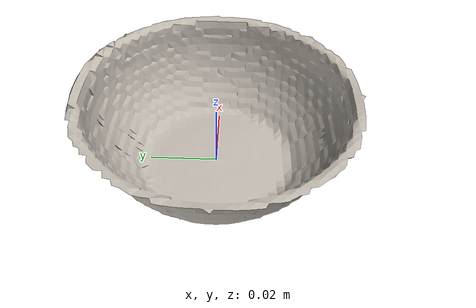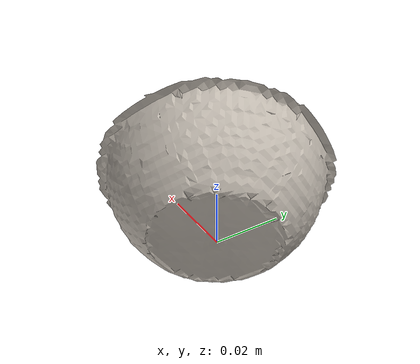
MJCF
<mujoco model="bowl">
  <asset>
    <mesh file="meshes/bowl/bowl.stl" name="bowl_mesh" scale="0.5 0.5 0.5"/>
    <mesh file="meshes/bowl/bowl_hull_1.stl" name="m1" scale="0.5 0.5 0.5"/>
    <mesh file="meshes/bowl/bowl_hull_2.stl" name="m2" scale="0.5 0.5 0.5"/>
    <mesh file="meshes/bowl/bowl_hull_3.stl" name="m3" scale="0.5 0.5 0.5"/>
    <mesh file="meshes/bowl/bowl_hull_4.stl" name="m4" scale="0.5 0.5 0.5"/>
    <mesh file="meshes/bowl/bowl_hull_5.stl" name="m5" scale="0.5 0.5 0.5"/>
    <mesh file="meshes/bowl/bowl_hull_6.stl" name="m6" scale="0.5 0.5 0.5"/>
    <mesh file="meshes/bowl/bowl_hull_7.stl" name="m7" scale="0.5 0.5 0.5"/>
    <mesh file="meshes/bowl/bowl_hull_8.stl" name="m8" scale="0.5 0.5 0.5"/>
    <mesh file="meshes/bowl/bowl_hull_9.stl" name="m9" scale="0.5 0.5 0.5"/>
    <mesh file="meshes/bowl/bowl_hull_10.stl" name="m10" scale="0.5 0.5 0.5"/>
    <mesh file="meshes/bowl/bowl_hull_11.stl" name="m11" scale="0.5 0.5 0.5"/>
    <mesh file="meshes/bowl/bowl_hull_12.stl" name="m12" scale="0.5 0.5 0.5"/>
    <mesh file="meshes/bowl/bowl_hull_13.stl" name="m13" scale="0.5 0.5 0.5"/>
    <mesh file="meshes/bowl/bowl_hull_14.stl" name="m14" scale="0.5 0.5 0.5"/>
    <mesh file="meshes/bowl/bowl_hull_15.stl" name="m15" scale="0.5 0.5 0.5"/>
    <mesh file="meshes/bowl/bowl_hull_16.stl" name="m16" scale="0.5 0.5 0.5"/>
    <mesh file="meshes/bowl/bowl_hull_17.stl" name="m17" scale="0.5 0.5 0.5"/>
    <mesh file="meshes/bowl/bowl_hull_18.stl" name="m18" scale="0.5 0.5 0.5"/>
    <mesh file="meshes/bowl/bowl_hull_19.stl" name="m19" scale="0.5 0.5 0.5"/>
    <mesh file="meshes/bowl/bowl_hull_20.stl" name="m20" scale="0.5 0.5 0.5"/>
    <mesh file="meshes/bowl/bowl_hull_21.stl" name="m21" scale="0.5 0.5 0.5"/>
    <mesh file="meshes/bowl/bowl_hull_22.stl" name="m22" scale="0.5 0.5 0.5"/>
    <mesh file="meshes/bowl/bowl_hull_23.stl" name="m23" scale="0.5 0.5 0.5"/>
    <mesh file="meshes/bowl/bowl_hull_24.stl" name="m24" scale="0.5 0.5 0.5"/>
    <mesh file="meshes/bowl/bowl_hull_25.stl" name="m25" scale="0.5 0.5 0.5"/>
    <mesh file="meshes/bowl/bowl_hull_26.stl" name="m26" scale="0.5 0.5 0.5"/>
    <mesh file="meshes/bowl/bowl_hull_27.stl" name="m27" scale="0.5 0.5 0.5"/>
    <mesh file="meshes/bowl/bowl_hull_28.stl" name="m28" scale="0.5 0.5 0.5"/>
    <mesh file="meshes/bowl/bowl_hull_29.stl" name="m29" scale="0.5 0.5 0.5"/>
    <mesh file="meshes/bowl/bowl_hull_30.stl" name="m30" scale="0.5 0.5 0.5"/>
    <mesh file="meshes/bowl/bowl_hull_31.stl" name="m31" scale="0.5 0.5 0.5"/>
    <mesh file="meshes/bowl/bowl_hull_32.stl" name="m32" scale="0.5 0.5 0.5"/>
    <mesh file="meshes/bowl/bowl_hull_33.stl" name="m33" scale="0.5 0.5 0.5"/>
    <mesh file="meshes/bowl/bowl_hull_34.stl" name="m34" scale="0.5 0.5 0.5"/>
    <mesh file="meshes/bowl/bowl_hull_35.stl" name="m35" scale="0.5 0.5 0.5"/>
    <mesh file="meshes/bowl/bowl_hull_36.stl" name="m36" scale="0.5 0.5 0.5"/>
    <mesh file="meshes/bowl/bowl_hull_37.stl" name="m37" scale="0.5 0.5 0.5"/>
    <mesh file="meshes/bowl/bowl_hull_38.stl" name="m38" scale="0.5 0.5 0.5"/>
    <mesh file="meshes/bowl/bowl_hull_39.stl" name="m39" scale="0.5 0.5 0.5"/>
    <mesh file="meshes/bowl/bowl_hull_40.stl" name="m40" scale="0.5 0.5 0.5"/>
    <mesh file="meshes/bowl/bowl_hull_41.stl" name="m41" scale="0.5 0.5 0.5"/>
    <mesh file="meshes/bowl/bowl_hull_42.stl" name="m42" scale="0.5 0.5 0.5"/>
    <mesh file="meshes/bowl/bowl_hull_43.stl" name="m43" scale="0.5 0.5 0.5"/>
    <mesh file="meshes/bowl/bowl_hull_44.stl" name="m44" scale="0.5 0.5 0.5"/>
    <mesh file="meshes/bowl/bowl_hull_45.stl" name="m45" scale="0.5 0.5 0.5"/>
    <mesh file="meshes/bowl/bowl_hull_46.stl" name="m46" scale="0.5 0.5 0.5"/>
    <mesh file="meshes/bowl/bowl_hull_47.stl" name="m47" scale="0.5 0.5 0.5"/>
    <mesh file="meshes/bowl/bowl_hull_48.stl" name="m48" scale="0.5 0.5 0.5"/>
    <mesh file="meshes/bowl/bowl_hull_49.stl" name="m49" scale="0.5 0.5 0.5"/>
    <mesh file="meshes/bowl/bowl_hull_50.stl" name="m50" scale="0.5 0.5 0.5"/>
    <mesh file="meshes/bowl/bowl_hull_51.stl" name="m51" scale="0.5 0.5 0.5"/>
    <mesh file="meshes/bowl/bowl_hull_52.stl" name="m52" scale="0.5 0.5 0.5"/>
    <mesh file="meshes/bowl/bowl_hull_53.stl" name="m53" scale="0.5 0.5 0.5"/>
    <mesh file="meshes/bowl/bowl_hull_54.stl" name="m54" scale="0.5 0.5 0.5"/>
    <mesh file="meshes/bowl/bowl_hull_55.stl" name="m55" scale="0.5 0.5 0.5"/>
    <mesh file="meshes/bowl/bowl_hull_56.stl" name="m56" scale="0.5 0.5 0.5"/>
    <mesh file="meshes/bowl/bowl_hull_57.stl" name="m57" scale="0.5 0.5 0.5"/>

    <texture file="../textures/textures.png" name="tex-bowl"/>
    <material name="bowl" reflectance="0.7" texrepeat="5 5" texture="tex-bowl" texuniform="true"/>
  </asset>
  <worldbody>
    <body>
      <body name="visual">
        <geom pos="0 0 0" mesh="bowl_mesh" type="mesh" material="bowl"  conaffinity="0" contype="0" group="0" mass="0.0001"/>
        <geom pos="0 0 0" mesh="bowl_mesh" type="mesh" material="bowl"  conaffinity="0" contype="0" group="1" mass="0.0001"/>
      </body>
      <site rgba="0 0 0 0" size="0.005" pos="0 0 -0.06" name="bottom_site"/>
      <site rgba="0 0 0 0" size="0.005" pos="0 0 0.04" name="top_site"/>
      <site rgba="0 0 0 0" size="0.005" pos="0.025 0.025 0" name="horizontal_radius_site"/>
    </body>
  </worldbody>
</mujoco>
